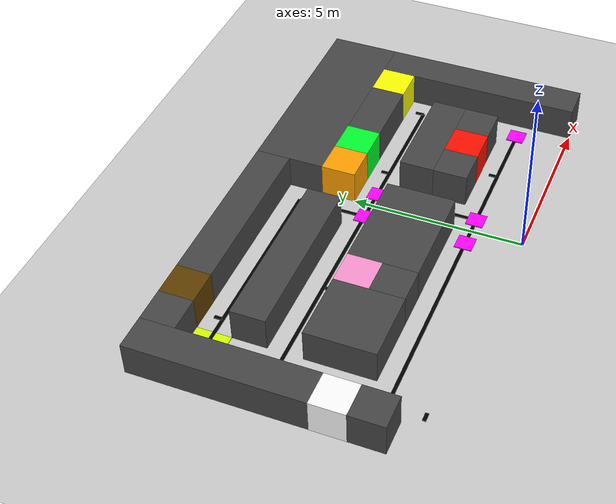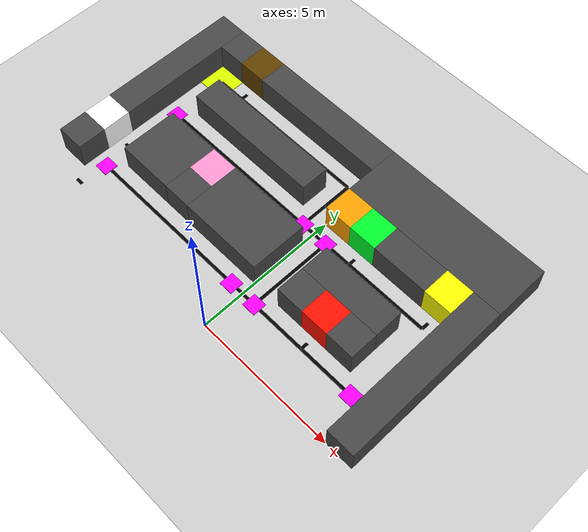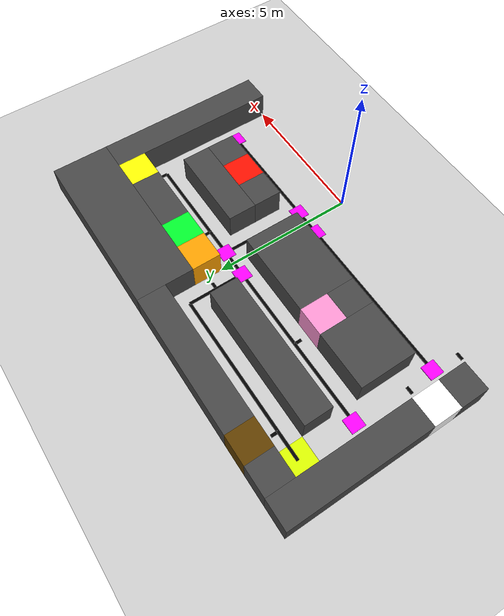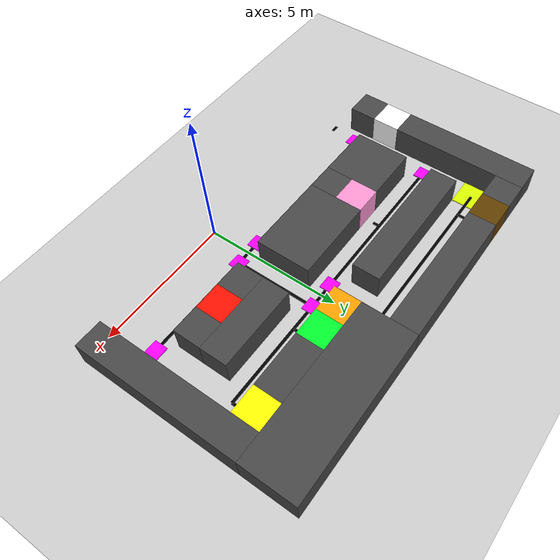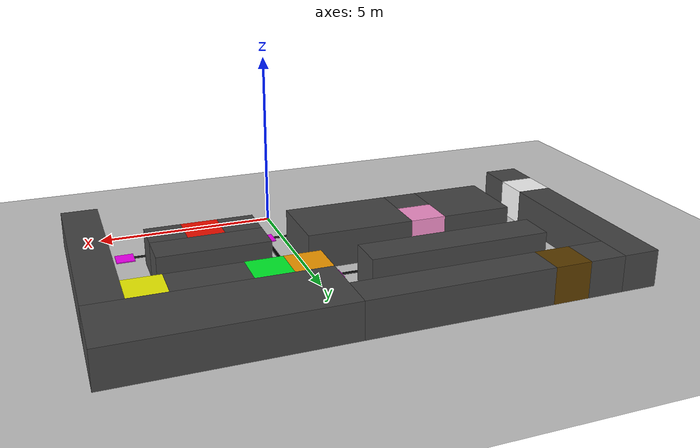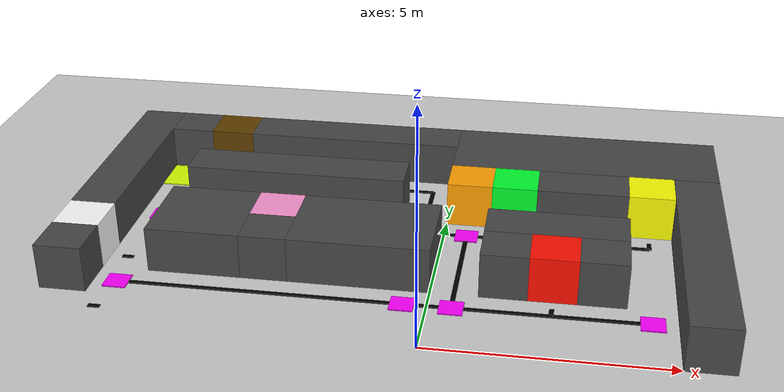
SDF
<sdf version="1.10">
 <world name="coloured_world">
  <model name="ground_plane">
   <static>true</static>
   <link name="link">
    <collision name="collision">
     <geometry><plane><normal>0 0 1</normal><size>100 100</size></plane></geometry>
    </collision>
    <visual name="visual">
     <geometry><plane><normal>0 0 1</normal><size>100 100</size></plane></geometry>
     <material>
      <ambient>0.800000012 0.800000012 0.800000012 1</ambient>
      <diffuse>0.800000012 0.800000012 0.800000012 1</diffuse>
      <specular>0.800000012 0.800000012 0.800000012 1</specular>
     </material>
    </visual>
    <inertial>
     <mass>1</mass>
     <inertia><ixx>1</ixx><ixy>0</ixy><ixz>0</ixz><iyy>1</iyy><iyz>0</iyz><izz>1</izz></inertia>
    </inertial>
   </link>
  </model>
  <model name="box">
   <pose>-7.5 5.5 0.5 0 0 0</pose>
   <link name="box_link">
    <inertial>
     <inertia><ixx>0.16666</ixx><ixy>0</ixy><ixz>0</ixz><iyy>0.16666</iyy><iyz>0</iyz><izz>0.16666</izz></inertia>
     <mass>1</mass>
    </inertial>
    <collision name="box_collision"><geometry><box><size>1 5 1</size></box></geometry></collision>
    <visual name="box_visual">
     <geometry><box><size>1 5 1</size></box></geometry>
     <material>
      <ambient>0.300000012 0.300000012 0.300000012 1</ambient>
      <diffuse>0.277999997 0.277999997 0.277999997 1</diffuse>
      <specular>1 1 1 1</specular>
     </material>
    </visual>
   </link>
   <static>true</static>
  </model>
  <model name="PO">
   <pose>-7.5 2.5 0.5 0 0 0</pose>
   <link name="box_link">
    <inertial>
     <inertia><ixx>0.16666</ixx><ixy>0</ixy><ixz>0</ixz><iyy>0.16666</iyy><iyz>0</iyz><izz>0.16666</izz></inertia>
     <mass>1</mass>
    </inertial>
    <collision name="box_collision"><geometry><box><size>1 1 1</size></box></geometry></collision>
    <visual name="box_visual">
     <geometry><box><size>1 1 1</size></box></geometry>
     <material>
      <ambient>0.300000012 0.300000012 0.300000012 1</ambient>
      <diffuse>1 1 1 1</diffuse>
      <specular>1 1 1 1</specular>
     </material>
    </visual>
   </link>
   <static>true</static>
  </model>
  <model name="box_3">
   <pose>-6.5 7.5 0.5 4.6034300000052197e-07 4.603870000005235e-07 6.6837400000076367e-10</pose>
   <link name="box_link">
    <inertial>
     <inertia><ixx>0.16666</ixx><ixy>0</ixy><ixz>0</ixz><iyy>0.16666</iyy><iyz>0</iyz><izz>0.16666</izz></inertia>
     <mass>1</mass>
    </inertial>
    <collision name="box_collision"><geometry><box><size>1 1 1</size></box></geometry></collision>
    <visual name="box_visual">
     <geometry><box><size>1 1 1</size></box></geometry>
     <material>
      <ambient>0.300000012 0.300000012 0.300000012 1</ambient>
      <diffuse>0.277999997 0.277999997 0.277999997 1</diffuse>
      <specular>1 1 1 1</specular>
     </material>
    </visual>
   </link>
   <static>true</static>
  </model>
  <model name="HOUSE_1">
   <pose>-5.5 7.5 0.5 4.6034300000052197e-07 4.603870000005235e-07 6.6837400000076367e-10</pose>
   <link name="box_link">
    <inertial>
     <inertia><ixx>0.16666</ixx><ixy>0</ixy><ixz>0</ixz><iyy>0.16666</iyy><iyz>0</iyz><izz>0.16666</izz></inertia>
     <mass>1</mass>
    </inertial>
    <collision name="box_collision"><geometry><box><size>1 1 1</size></box></geometry></collision>
    <visual name="box_visual">
     <geometry><box><size>1 1 1</size></box></geometry>
     <material>
      <ambient>0.300000012 0.300000012 0.300000012 1</ambient>
      <diffuse>0.379999995 0.246999994 0 1</diffuse>
      <specular>1 1 1 1</specular>
     </material>
    </visual>
   </link>
   <static>true</static>
  </model>
  <model name="box_5">
   <pose>-2.5 7.5 0.5 4.6034300000052197e-07 4.603870000005235e-07 6.6837400000076367e-10</pose>
   <link name="box_link">
    <inertial>
     <inertia><ixx>0.16666</ixx><ixy>0</ixy><ixz>0</ixz><iyy>0.16666</iyy><iyz>0</iyz><izz>0.16666</izz></inertia>
     <mass>1</mass>
    </inertial>
    <collision name="box_collision"><geometry><box><size>5 1 1</size></box></geometry></collision>
    <visual name="box_visual">
     <geometry><box><size>5 1 1</size></box></geometry>
     <material>
      <ambient>0.300000012 0.300000012 0.300000012 1</ambient>
      <diffuse>0.277999997 0.277999997 0.277999997 1</diffuse>
      <specular>1 1 1 1</specular>
     </material>
    </visual>
   </link>
   <static>true</static>
  </model>
  <model name="box_6">
   <pose>3 7 0.5 0 0 0</pose>
   <link name="box_link">
    <inertial>
     <inertia><ixx>0.16666</ixx><ixy>0</ixy><ixz>0</ixz><iyy>0.16666</iyy><iyz>0</iyz><izz>0.16666</izz></inertia>
     <mass>1</mass>
    </inertial>
    <collision name="box_collision"><geometry><box><size>6 2 1</size></box></geometry></collision>
    <visual name="box_visual">
     <geometry><box><size>6 2 1</size></box></geometry>
     <material>
      <ambient>0.300000012 0.300000012 0.300000012 1</ambient>
      <diffuse>0.277999997 0.277999997 0.277999997 1</diffuse>
      <specular>1 1 1 1</specular>
     </material>
    </visual>
   </link>
   <static>true</static>
  </model>
  <model name="box_7">
   <pose>5.5 3 0.5 1.6937494726750003e-43 0 0</pose>
   <link name="box_link">
    <inertial>
     <inertia><ixx>0.16666</ixx><ixy>0</ixy><ixz>0</ixz><iyy>0.16666</iyy><iyz>0</iyz><izz>0.16666</izz></inertia>
     <mass>1</mass>
    </inertial>
    <collision name="box_collision"><geometry><box><size>1 6 1</size></box></geometry></collision>
    <visual name="box_visual">
     <geometry><box><size>1 6 1</size></box></geometry>
     <material>
      <ambient>0.300000012 0.300000012 0.300000012 1</ambient>
      <diffuse>0.277999997 0.277999997 0.277999997 1</diffuse>
      <specular>1 1 1 1</specular>
     </material>
    </visual>
   </link>
   <static>true</static>
  </model>
  <model name="box_16">
   <pose>-3.5 5.5000000000000004 0.5 0 0 0</pose>
   <link name="box_link">
    <inertial>
     <inertia><ixx>0.16666</ixx><ixy>0</ixy><ixz>0</ixz><iyy>0.16666</iyy><iyz>0</iyz><izz>0.16666</izz></inertia>
     <mass>1</mass>
    </inertial>
    <collision name="box_collision"><geometry><box><size>5 1 1</size></box></geometry></collision>
    <visual name="box_visual">
     <geometry><box><size>5 1 1</size></box></geometry>
     <material>
      <ambient>0.300000012 0.300000012 0.300000012 1</ambient>
      <diffuse>0.277999997 0.277999997 0.277999997 1</diffuse>
      <specular>1 1 1 1</specular>
     </material>
    </visual>
   </link>
   <static>true</static>
  </model>
  <model name="HOUSE_3">
   <pose>0.5 5.5 0.5 0 0 0</pose>
   <link name="box_link">
    <inertial>
     <inertia><ixx>0.16666</ixx><ixy>0</ixy><ixz>0</ixz><iyy>0.16666</iyy><iyz>0</iyz><izz>0.16666</izz></inertia>
     <mass>1</mass>
    </inertial>
    <collision name="box_collision"><geometry><box><size>1 1 1</size></box></geometry></collision>
    <visual name="box_visual">
     <geometry><box><size>1 1 1</size></box></geometry>
     <material>
      <ambient>1 0.647000015 0 1</ambient>
      <diffuse>1 0.630999982 0 1</diffuse>
      <specular>1 1 1 1</specular>
     </material>
    </visual>
   </link>
   <static>true</static>
  </model>
  <model name="CHARGER_1">
   <pose>1.5 5.5 0.5 0 0 0</pose>
   <link name="box_link">
    <inertial>
     <inertia><ixx>0.16666</ixx><ixy>0</ixy><ixz>0</ixz><iyy>0.16666</iyy><iyz>0</iyz><izz>0.16666</izz></inertia>
     <mass>1</mass>
    </inertial>
    <collision name="box_collision"><geometry><box><size>1 1 1</size></box></geometry></collision>
    <visual name="box_visual">
     <geometry><box><size>1 1 1</size></box></geometry>
     <material>
      <ambient>0.300000012 0.300000012 0.300000012 1</ambient>
      <diffuse>0 1 0.175999999 1</diffuse>
      <specular>1 1 1 1</specular>
     </material>
    </visual>
   </link>
   <static>true</static>
  </model>
  <model name="box_19">
   <pose>3 5.5 0.5 0 0 0</pose>
   <link name="box_link">
    <inertial>
     <inertia><ixx>0.16666</ixx><ixy>0</ixy><ixz>0</ixz><iyy>0.16666</iyy><iyz>0</iyz><izz>0.16666</izz></inertia>
     <mass>1</mass>
    </inertial>
    <collision name="box_collision"><geometry><box><size>2 1 1</size></box></geometry></collision>
    <visual name="box_visual">
     <geometry><box><size>2 1 1</size></box></geometry>
     <material>
      <ambient>0.300000012 0.300000012 0.300000012 1</ambient>
      <diffuse>0.277999997 0.277999997 0.277999997 1</diffuse>
      <specular>1 1 1 1</specular>
     </material>
    </visual>
   </link>
   <static>true</static>
  </model>
  <model name="HOUSE_2">
   <pose>4.5 5.5 0.5 0 0 0</pose>
   <link name="box_link">
    <inertial>
     <inertia><ixx>0.16666</ixx><ixy>0</ixy><ixz>0</ixz><iyy>0.16666</iyy><iyz>0</iyz><izz>0.16666</izz></inertia>
     <mass>1</mass>
    </inertial>
    <collision name="box_collision"><geometry><box><size>1 1 1</size></box></geometry></collision>
    <visual name="box_visual">
     <geometry><box><size>1 1 1</size></box></geometry>
     <material>
      <ambient>0.300000012 0.300000012 0.300000012 1</ambient>
      <diffuse>0.991999984 1 0 1</diffuse>
      <specular>1 1 1 1</specular>
     </material>
    </visual>
   </link>
   <static>true</static>
  </model>
  <model name="box_21">
   <pose>2.5 3.5 0.5 0 0 0</pose>
   <link name="box_link">
    <inertial>
     <inertia><ixx>0.16666</ixx><ixy>0</ixy><ixz>0</ixz><iyy>0.16666</iyy><iyz>0</iyz><izz>0.16666</izz></inertia>
     <mass>1</mass>
    </inertial>
    <collision name="box_collision"><geometry><box><size>3 1 1</size></box></geometry></collision>
    <visual name="box_visual">
     <geometry><box><size>3 1 1</size></box></geometry>
     <material>
      <ambient>0.300000012 0.300000012 0.300000012 1</ambient>
      <diffuse>0.277999997 0.277999997 0.277999997 1</diffuse>
      <specular>1 1 1 1</specular>
     </material>
    </visual>
   </link>
   <static>true</static>
  </model>
  <model name="box_22">
   <pose>3.5 2.5 0.5 0 0 0</pose>
   <link name="box_link">
    <inertial>
     <inertia><ixx>0.16666</ixx><ixy>0</ixy><ixz>0</ixz><iyy>0.16666</iyy><iyz>0</iyz><izz>0.16666</izz></inertia>
     <mass>1</mass>
    </inertial>
    <collision name="box_collision"><geometry><box><size>1 1 1</size></box></geometry></collision>
    <visual name="box_visual">
     <geometry><box><size>1 1 1</size></box></geometry>
     <material>
      <ambient>0.300000012 0.300000012 0.300000012 1</ambient>
      <diffuse>0.277999997 0.277999997 0.277999997 1</diffuse>
      <specular>1 1 1 1</specular>
     </material>
    </visual>
   </link>
   <static>true</static>
  </model>
  <model name="HOUSE_5">
   <pose>2.5 2.5 0.5 0 0 0</pose>
   <link name="box_link">
    <inertial>
     <inertia><ixx>0.16666</ixx><ixy>0</ixy><ixz>0</ixz><iyy>0.16666</iyy><iyz>0</iyz><izz>0.16666</izz></inertia>
     <mass>1</mass>
    </inertial>
    <collision name="box_collision"><geometry><box><size>1 1 1</size></box></geometry></collision>
    <visual name="box_visual">
     <geometry><box><size>1 1 1</size></box></geometry>
     <material>
      <ambient>0.300000012 0.300000012 0.300000012 1</ambient>
      <diffuse>1 0.063000001 0 1</diffuse>
      <specular>1 1 1 1</specular>
     </material>
    </visual>
   </link>
   <static>true</static>
  </model>
  <model name="box_24">
   <pose>1.5 2.5 0.5 0 0 0</pose>
   <link name="box_link">
    <inertial>
     <inertia><ixx>0.16666</ixx><ixy>0</ixy><ixz>0</ixz><iyy>0.16666</iyy><iyz>0</iyz><izz>0.16666</izz></inertia>
     <mass>1</mass>
    </inertial>
    <collision name="box_collision"><geometry><box><size>1 1 1</size></box></geometry></collision>
    <visual name="box_visual">
     <geometry><box><size>1 1 1</size></box></geometry>
     <material>
      <ambient>0.300000012 0.300000012 0.300000012 1</ambient>
      <diffuse>0.277999997 0.277999997 0.277999997 1</diffuse>
      <specular>1 1 1 1</specular>
     </material>
    </visual>
   </link>
   <static>true</static>
  </model>
  <model name="box_25">
   <pose>-1.5 3 0.5 0 0 0</pose>
   <link name="box_link">
    <inertial>
     <inertia><ixx>0.16666</ixx><ixy>0</ixy><ixz>0</ixz><iyy>0.16666</iyy><iyz>0</iyz><izz>0.16666</izz></inertia>
     <mass>1</mass>
    </inertial>
    <collision name="box_collision"><geometry><box><size>3 2 1</size></box></geometry></collision>
    <visual name="box_visual">
     <geometry><box><size>3 2 1</size></box></geometry>
     <material>
      <ambient>0.300000012 0.300000012 0.300000012 1</ambient>
      <diffuse>0.277999997 0.277999997 0.277999997 1</diffuse>
      <specular>1 1 1 1</specular>
     </material>
    </visual>
   </link>
   <static>true</static>
  </model>
  <model name="HOUSE_4">
   <pose>-3.5 3.5 0.5 0 0 0</pose>
   <link name="box_link">
    <inertial>
     <inertia><ixx>0.16666</ixx><ixy>0</ixy><ixz>0</ixz><iyy>0.16666</iyy><iyz>0</iyz><izz>0.16666</izz></inertia>
     <mass>1</mass>
    </inertial>
    <collision name="box_collision"><geometry><box><size>1 1 1</size></box></geometry></collision>
    <visual name="box_visual">
     <geometry><box><size>1 1 1</size></box></geometry>
     <material>
      <ambient>0.300000012 0.300000012 0.300000012 1</ambient>
      <diffuse>0.987999976 0.583999991 0.819999993 1</diffuse>
      <specular>1 1 1 1</specular>
     </material>
    </visual>
   </link>
   <static>true</static>
  </model>
  <model name="box_27">
   <pose>-3.5 2.5 0.5 0 0 0</pose>
   <link name="box_link">
    <inertial>
     <inertia><ixx>0.16666</ixx><ixy>0</ixy><ixz>0</ixz><iyy>0.16666</iyy><iyz>0</iyz><izz>0.16666</izz></inertia>
     <mass>1</mass>
    </inertial>
    <collision name="box_collision"><geometry><box><size>1 1 1</size></box></geometry></collision>
    <visual name="box_visual">
     <geometry><box><size>1 1 1</size></box></geometry>
     <material>
      <ambient>0.300000012 0.300000012 0.300000012 1</ambient>
      <diffuse>0.277999997 0.277999997 0.277999997 1</diffuse>
      <specular>1 1 1 1</specular>
     </material>
    </visual>
   </link>
   <static>true</static>
  </model>
  <model name="box_28">
   <pose>-5 3 0.5 0 0 0</pose>
   <link name="box_link">
    <inertial>
     <inertia><ixx>0.16666</ixx><ixy>0</ixy><ixz>0</ixz><iyy>0.16666</iyy><iyz>0</iyz><izz>0.16666</izz></inertia>
     <mass>1</mass>
    </inertial>
    <collision name="box_collision"><geometry><box><size>2 2 1</size></box></geometry></collision>
    <visual name="box_visual">
     <geometry><box><size>2 2 1</size></box></geometry>
     <material>
      <ambient>0.300000012 0.300000012 0.300000012 1</ambient>
      <diffuse>0.277999997 0.277999997 0.277999997 1</diffuse>
      <specular>1 1 1 1</specular>
     </material>
    </visual>
   </link>
   <static>true</static>
  </model>
  <model name="line_3">
   <pose>-1 1.5 0 0 0 0</pose>
   <link name="box_link">
    <inertial>
     <inertia><ixx>0.16666</ixx><ixy>0</ixy><ixz>0</ixz><iyy>0.16666</iyy><iyz>0</iyz><izz>0.16666</izz></inertia>
     <mass>1</mass>
    </inertial>
    <collision name="box_collision">
     <geometry><box><size>11 0.10000000000000001 0.025000000000000001</size></box></geometry>
    </collision>
    <visual name="box_visual">
     <geometry><box><size>11 0.10000000000000001 0.025000000000000001</size></box></geometry>
     <material>
      <ambient>0.300000012 0.300000012 0.300000012 1</ambient>
      <diffuse>0 0 0 1</diffuse>
      <specular>1 1 1 1</specular>
     </material>
    </visual>
   </link>
   <static>true</static>
  </model>
  <model name="line_8">
   <pose>0.5 3 0 0 0 0</pose>
   <link name="box_link">
    <inertial>
     <inertia><ixx>0.16666</ixx><ixy>0</ixy><ixz>0</ixz><iyy>0.16666</iyy><iyz>0</iyz><izz>0.16666</izz></inertia>
     <mass>1</mass>
    </inertial>
    <collision name="box_collision">
     <geometry><box><size>0.10000000000000001 3 0.025000000000000001</size></box></geometry>
    </collision>
    <visual name="box_visual">
     <geometry><box><size>0.10000000000000001 3 0.025000000000000001</size></box></geometry>
     <material>
      <ambient>0.300000012 0.300000012 0.300000012 1</ambient>
      <diffuse>0 0 0 1</diffuse>
      <specular>1 1 1 1</specular>
     </material>
    </visual>
   </link>
   <static>true</static>
  </model>
  <model name="line_9">
   <pose>-1 4.5 0 0 0 0</pose>
   <link name="box_link">
    <inertial>
     <inertia><ixx>0.16666</ixx><ixy>0</ixy><ixz>0</ixz><iyy>0.16666</iyy><iyz>0</iyz><izz>0.16666</izz></inertia>
     <mass>1</mass>
    </inertial>
    <collision name="box_collision">
     <geometry><box><size>11 0.10000000000000001 0.025000000000000001</size></box></geometry>
    </collision>
    <visual name="box_visual">
     <geometry><box><size>11 0.10000000000000001 0.025000000000000001</size></box></geometry>
     <material>
      <ambient>0.300000012 0.300000012 0.300000012 1</ambient>
      <diffuse>0 0 0 1</diffuse>
      <specular>1 1 1 1</specular>
     </material>
    </visual>
   </link>
   <static>true</static>
  </model>
  <model name="line_10">
   <pose>-3.5 6.5 0 0 0 0</pose>
   <link name="box_link">
    <inertial>
     <inertia><ixx>0.16666</ixx><ixy>0</ixy><ixz>0</ixz><iyy>0.16666</iyy><iyz>0</iyz><izz>0.16666</izz></inertia>
     <mass>1</mass>
    </inertial>
    <collision name="box_collision">
     <geometry><box><size>6 0.10000000000000001 0.025000000000000001</size></box></geometry>
    </collision>
    <visual name="box_visual">
     <geometry><box><size>6 0.10000000000000001 0.025000000000000001</size></box></geometry>
     <material>
      <ambient>0.300000012 0.300000012 0.300000012 1</ambient>
      <diffuse>0 0 0 1</diffuse>
      <specular>1 1 1 1</specular>
     </material>
    </visual>
   </link>
   <static>true</static>
  </model>
  <model name="line_11">
   <pose>-0.5 5.5 0 0 0 0</pose>
   <link name="box_link">
    <inertial>
     <inertia><ixx>0.16666</ixx><ixy>0</ixy><ixz>0</ixz><iyy>0.16666</iyy><iyz>0</iyz><izz>0.16666</izz></inertia>
     <mass>1</mass>
    </inertial>
    <collision name="box_collision">
     <geometry><box><size>0.10000000000000001 2 0.025000000000000001</size></box></geometry>
    </collision>
    <visual name="box_visual">
     <geometry><box><size>0.10000000000000001 2 0.025000000000000001</size></box></geometry>
     <material>
      <ambient>0.300000012 0.300000012 0.300000012 1</ambient>
      <diffuse>0 0 0 1</diffuse>
      <specular>1 1 1 1</specular>
     </material>
    </visual>
   </link>
   <static>true</static>
  </model>
  <model name="in_line_H1">
   <pose>-5.5 6.625 0 0 0 0</pose>
   <link name="box_link">
    <inertial>
     <inertia><ixx>0.16666</ixx><ixy>0</ixy><ixz>0</ixz><iyy>0.16666</iyy><iyz>0</iyz><izz>0.16666</izz></inertia>
     <mass>1</mass>
    </inertial>
    <collision name="box_collision">
     <geometry><box><size>0.10000000000000001 0.25 0.025000000000000001</size></box></geometry>
    </collision>
    <visual name="box_visual">
     <geometry><box><size>0.10000000000000001 0.25 0.025000000000000001</size></box></geometry>
     <material>
      <ambient>0.300000012 0.300000012 0.300000012 1</ambient>
      <diffuse>0 0 0 1</diffuse>
      <specular>1 1 1 1</specular>
     </material>
    </visual>
   </link>
   <static>true</static>
  </model>
  <model name="in_line_H2">
   <pose>4.5 4.625 0 0 0 0</pose>
   <link name="box_link">
    <inertial>
     <inertia><ixx>0.16666</ixx><ixy>0</ixy><ixz>0</ixz><iyy>0.16666</iyy><iyz>0</iyz><izz>0.16666</izz></inertia>
     <mass>1</mass>
    </inertial>
    <collision name="box_collision">
     <geometry><box><size>0.10000000000000001 0.25 0.025000000000000001</size></box></geometry>
    </collision>
    <visual name="box_visual">
     <geometry><box><size>0.10000000000000001 0.25 0.025000000000000001</size></box></geometry>
     <material>
      <ambient>0.300000012 0.300000012 0.300000012 1</ambient>
      <diffuse>0 0 0 1</diffuse>
      <specular>1 1 1 1</specular>
     </material>
    </visual>
   </link>
   <static>true</static>
  </model>
  <model name="in_line_C1">
   <pose>1.5 4.625 0 0 0 0</pose>
   <link name="box_link">
    <inertial>
     <inertia><ixx>0.16666</ixx><ixy>0</ixy><ixz>0</ixz><iyy>0.16666</iyy><iyz>0</iyz><izz>0.16666</izz></inertia>
     <mass>1</mass>
    </inertial>
    <collision name="box_collision">
     <geometry><box><size>0.10000000000000001 0.25 0.025000000000000001</size></box></geometry>
    </collision>
    <visual name="box_visual">
     <geometry><box><size>0.10000000000000001 0.25 0.025000000000000001</size></box></geometry>
     <material>
      <ambient>0.300000012 0.300000012 0.300000012 1</ambient>
      <diffuse>0 0 0 1</diffuse>
      <specular>1 1 1 1</specular>
     </material>
    </visual>
   </link>
   <static>true</static>
  </model>
  <model name="in_line_H5">
   <pose>2.5 1.625 0 0 0 0</pose>
   <link name="box_link">
    <inertial>
     <inertia><ixx>0.16666</ixx><ixy>0</ixy><ixz>0</ixz><iyy>0.16666</iyy><iyz>0</iyz><izz>0.16666</izz></inertia>
     <mass>1</mass>
    </inertial>
    <collision name="box_collision">
     <geometry><box><size>0.10000000000000001 0.25 0.025000000000000001</size></box></geometry>
    </collision>
    <visual name="box_visual">
     <geometry><box><size>0.10000000000000001 0.25 0.025000000000000001</size></box></geometry>
     <material>
      <ambient>0.300000012 0.300000012 0.300000012 1</ambient>
      <diffuse>0 0 0 1</diffuse>
      <specular>1 1 1 1</specular>
     </material>
    </visual>
   </link>
   <static>true</static>
  </model>
  <model name="in_line_H4">
   <pose>-3.5 4.375 0 0 0 0</pose>
   <link name="box_link">
    <inertial>
     <inertia><ixx>0.16666</ixx><ixy>0</ixy><ixz>0</ixz><iyy>0.16666</iyy><iyz>0</iyz><izz>0.16666</izz></inertia>
     <mass>1</mass>
    </inertial>
    <collision name="box_collision">
     <geometry><box><size>0.10000000000000001 0.25 0.025000000000000001</size></box></geometry>
    </collision>
    <visual name="box_visual">
     <geometry><box><size>0.10000000000000001 0.25 0.025000000000000001</size></box></geometry>
     <material>
      <ambient>0.300000012 0.300000012 0.300000012 1</ambient>
      <diffuse>0 0 0 1</diffuse>
      <specular>1 1 1 1</specular>
     </material>
    </visual>
   </link>
   <static>true</static>
  </model>
  <model name="in_line_H3">
   <pose>-0.375 5.5 0 0 0 0</pose>
   <link name="box_link">
    <inertial>
     <inertia><ixx>0.16666</ixx><ixy>0</ixy><ixz>0</ixz><iyy>0.16666</iyy><iyz>0</iyz><izz>0.16666</izz></inertia>
     <mass>1</mass>
    </inertial>
    <collision name="box_collision">
     <geometry><box><size>0.25 0.10000000000000001 0.025000000000000001</size></box></geometry>
    </collision>
    <visual name="box_visual">
     <geometry><box><size>0.25 0.10000000000000001 0.025000000000000001</size></box></geometry>
     <material>
      <ambient>0.300000012 0.300000012 0.300000012 1</ambient>
      <diffuse>0 0 0 1</diffuse>
      <specular>1 1 1 1</specular>
     </material>
    </visual>
   </link>
   <static>true</static>
  </model>
  <model name="in_line_PO">
   <pose>-6.625 2.5 0 0 0 0</pose>
   <link name="box_link">
    <inertial>
     <inertia><ixx>0.16666</ixx><ixy>0</ixy><ixz>0</ixz><iyy>0.16666</iyy><iyz>0</iyz><izz>0.16666</izz></inertia>
     <mass>1</mass>
    </inertial>
    <collision name="box_collision">
     <geometry><box><size>0.25 0.10000000000000001 0.025000000000000001</size></box></geometry>
    </collision>
    <visual name="box_visual">
     <geometry><box><size>0.25 0.10000000000000001 0.025000000000000001</size></box></geometry>
     <material>
      <ambient>0.300000012 0.300000012 0.300000012 1</ambient>
      <diffuse>0 0 0 1</diffuse>
      <specular>1 1 1 1</specular>
     </material>
    </visual>
   </link>
   <static>true</static>
  </model>
  <model name="in_line_C0">
   <pose>-6.625 0.5 0 0 0 0</pose>
   <link name="box_link">
    <inertial>
     <inertia><ixx>0.16666</ixx><ixy>0</ixy><ixz>0</ixz><iyy>0.16666</iyy><iyz>0</iyz><izz>0.16666</izz></inertia>
     <mass>1</mass>
    </inertial>
    <collision name="box_collision">
     <geometry><box><size>0.25 0.10000000000000001 0.025000000000000001</size></box></geometry>
    </collision>
    <visual name="box_visual">
     <geometry><box><size>0.25 0.10000000000000001 0.025000000000000001</size></box></geometry>
     <material>
      <ambient>0.300000012 0.300000012 0.300000012 1</ambient>
      <diffuse>0 0 0 1</diffuse>
      <specular>1 1 1 1</specular>
     </material>
    </visual>
   </link>
   <static>true</static>
  </model>
  <model name="box_0">
   <pose>-7.5 1.5 0.5 0 0 0</pose>
   <link name="box_link">
    <inertial>
     <inertia><ixx>0.16666</ixx><ixy>0</ixy><ixz>0</ixz><iyy>0.16666</iyy><iyz>0</iyz><izz>0.16666</izz></inertia>
     <mass>1</mass>
    </inertial>
    <collision name="box_collision"><geometry><box><size>1 1 1</size></box></geometry></collision>
    <visual name="box_visual">
     <geometry><box><size>1 1 1</size></box></geometry>
     <material>
      <ambient>0.300000012 0.300000012 0.300000012 1</ambient>
      <diffuse>0.277999997 0.277999997 0.277999997 1</diffuse>
      <specular>1 1 1 1</specular>
     </material>
    </visual>
   </link>
   <static>false</static>
  </model>
  <model name="A">
   <pose>-6.5 1.5 0 0 0 0</pose>
   <link name="box_link">
    <inertial>
     <inertia><ixx>0.16666</ixx><ixy>0</ixy><ixz>0</ixz><iyy>0.16666</iyy><iyz>0</iyz><izz>0.16666</izz></inertia>
     <mass>1</mass>
    </inertial>
    <collision name="box_collision"><geometry><box><size>0.5 0.5 0.02501</size></box></geometry></collision>
    <visual name="box_visual">
     <geometry><box><size>0.5 0.5 0.02501</size></box></geometry>
     <material>
      <ambient>0.300000012 0.300000012 0.300000012 1</ambient>
      <diffuse>1 0 1 1</diffuse>
      <specular>1 1 1 1</specular>
     </material>
    </visual>
   </link>
   <static>true</static>
  </model>
  <model name="C">
   <pose>-0.5 4.5 0 0 0 0</pose>
   <link name="box_link">
    <inertial>
     <inertia><ixx>0.16666</ixx><ixy>0</ixy><ixz>0</ixz><iyy>0.16666</iyy><iyz>0</iyz><izz>0.16666</izz></inertia>
     <mass>1</mass>
    </inertial>
    <collision name="box_collision"><geometry><box><size>0.5 0.5 0.02501</size></box></geometry></collision>
    <visual name="box_visual">
     <geometry><box><size>0.5 0.5 0.02501</size></box></geometry>
     <material>
      <ambient>0.300000012 0.300000012 0.300000012 1</ambient>
      <diffuse>1 0 1 1</diffuse>
      <specular>1 1 1 1</specular>
     </material>
    </visual>
   </link>
   <static>true</static>
  </model>
  <model name="D">
   <pose>-0.5 1.5 0 0 0 0</pose>
   <link name="box_link">
    <inertial>
     <inertia><ixx>0.16666</ixx><ixy>0</ixy><ixz>0</ixz><iyy>0.16666</iyy><iyz>0</iyz><izz>0.16666</izz></inertia>
     <mass>1</mass>
    </inertial>
    <collision name="box_collision"><geometry><box><size>0.5 0.5 0.02501</size></box></geometry></collision>
    <visual name="box_visual">
     <geometry><box><size>0.5 0.5 0.02501</size></box></geometry>
     <material>
      <ambient>0.300000012 0.300000012 0.300000012 1</ambient>
      <diffuse>1 0 1 1</diffuse>
      <specular>1 1 1 1</specular>
     </material>
    </visual>
   </link>
   <static>true</static>
  </model>
  <model name="G">
   <pose>0.5 4.5 0 0 0 0</pose>
   <link name="box_link">
    <inertial>
     <inertia><ixx>0.16666</ixx><ixy>0</ixy><ixz>0</ixz><iyy>0.16666</iyy><iyz>0</iyz><izz>0.16666</izz></inertia>
     <mass>1</mass>
    </inertial>
    <collision name="box_collision"><geometry><box><size>0.5 0.5 0.02501</size></box></geometry></collision>
    <visual name="box_visual">
     <geometry><box><size>0.5 0.5 0.02501</size></box></geometry>
     <material>
      <ambient>0.300000012 0.300000012 0.300000012 1</ambient>
      <diffuse>1 0 1 1</diffuse>
      <specular>1 1 1 1</specular>
     </material>
    </visual>
   </link>
   <static>true</static>
  </model>
  <model name="H">
   <pose>0.5 1.5 0 0 0 0</pose>
   <link name="box_link">
    <inertial>
     <inertia><ixx>0.16666</ixx><ixy>0</ixy><ixz>0</ixz><iyy>0.16666</iyy><iyz>0</iyz><izz>0.16666</izz></inertia>
     <mass>1</mass>
    </inertial>
    <collision name="box_collision"><geometry><box><size>0.5 0.5 0.02501</size></box></geometry></collision>
    <visual name="box_visual">
     <geometry><box><size>0.5 0.5 0.02501</size></box></geometry>
     <material>
      <ambient>0.300000012 0.300000012 0.300000012 1</ambient>
      <diffuse>1 0 1 1</diffuse>
      <specular>1 1 1 1</specular>
     </material>
    </visual>
   </link>
   <static>true</static>
  </model>
  <model name="I">
   <pose>4.5 1.5 0 0 0 0</pose>
   <link name="box_link">
    <inertial>
     <inertia><ixx>0.16666</ixx><ixy>0</ixy><ixz>0</ixz><iyy>0.16666</iyy><iyz>0</iyz><izz>0.16666</izz></inertia>
     <mass>1</mass>
    </inertial>
    <collision name="box_collision"><geometry><box><size>0.5 0.5 0.02501</size></box></geometry></collision>
    <visual name="box_visual">
     <geometry><box><size>0.5 0.5 0.02501</size></box></geometry>
     <material>
      <ambient>0.300000012 0.300000012 0.300000012 1</ambient>
      <diffuse>1 0 1 1</diffuse>
      <specular>1 1 1 1</specular>
     </material>
    </visual>
   </link>
   <static>true</static>
  </model>
  <model name="J">
   <pose>-6.5 4.5 0 0 0 0</pose>
   <link name="box_link">
    <inertial>
     <inertia><ixx>0.16666</ixx><ixy>0</ixy><ixz>0</ixz><iyy>0.16666</iyy><iyz>0</iyz><izz>0.16666</izz></inertia>
     <mass>1</mass>
    </inertial>
    <collision name="box_collision"><geometry><box><size>0.5 0.5 0.02501</size></box></geometry></collision>
    <visual name="box_visual">
     <geometry><box><size>0.5 0.5 0.02501</size></box></geometry>
     <material>
      <ambient>0.300000012 0.300000012 0.300000012 1</ambient>
      <diffuse>1 0 1 1</diffuse>
      <specular>1 1 1 1</specular>
     </material>
    </visual>
   </link>
   <static>true</static>
  </model>
  <model name="beta">
   <pose>-6.5 6.5 0 0 0 0</pose>
   <link name="box_link">
    <inertial>
     <inertia><ixx>0.16666</ixx><ixy>0</ixy><ixz>0</ixz><iyy>0.16666</iyy><iyz>0</iyz><izz>0.16666</izz></inertia>
     <mass>1</mass>
    </inertial>
    <collision name="box_collision"><geometry><box><size>1 1 0.02501</size></box></geometry></collision>
    <visual name="box_visual">
     <geometry><box><size>1 1 0.02499</size></box></geometry>
     <material>
      <ambient>0.300000012 0.300000012 0.300000012 1</ambient>
      <diffuse>0.85 1 0 1</diffuse>
      <specular>1 1 1 1</specular>
     </material>
    </visual>
   </link>
   <static>true</static>
  </model>
 </world>
</sdf>
